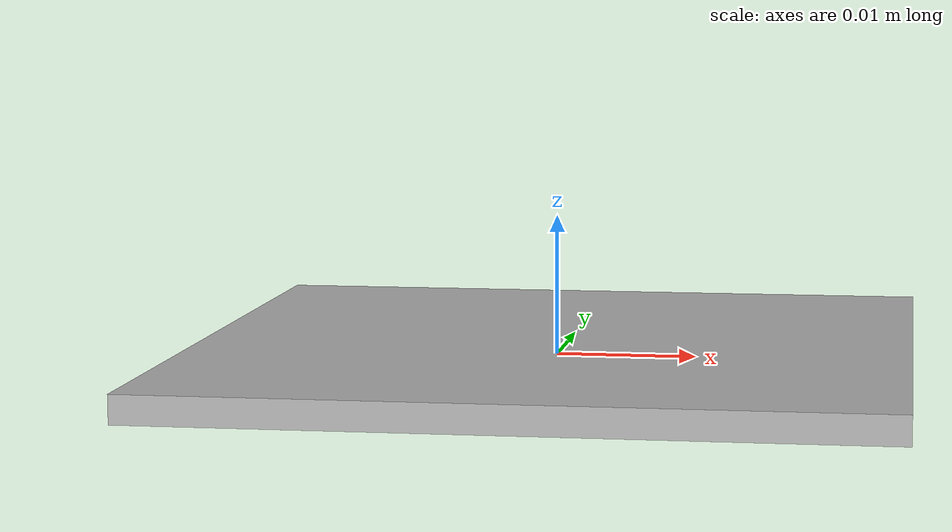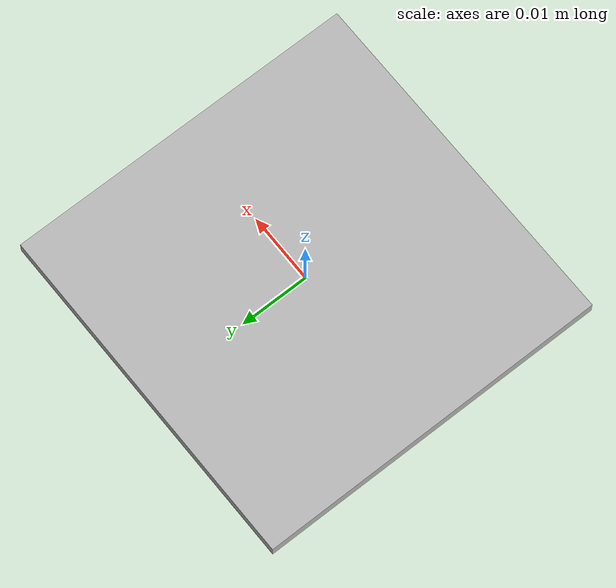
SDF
<?xml version='1.0'?>
<sdf version='1.6'>
  <model name='ARMarker1'>
    <link name='link_2'>
      <visual name='visual'>
        <geometry>
          <mesh>
            <uri>model://ARMarker1/ArMarker1.dae</uri>

	  </mesh>
        </geometry>
      </visual>
      <collision name='collision'>
        <geometry>
          <mesh>
            <uri>model://ARMarker1/ArMarker1.dae</uri>
	  </mesh>
        </geometry>
      </collision>
    </link>
    <static>1</static>
  </model>
</sdf>
